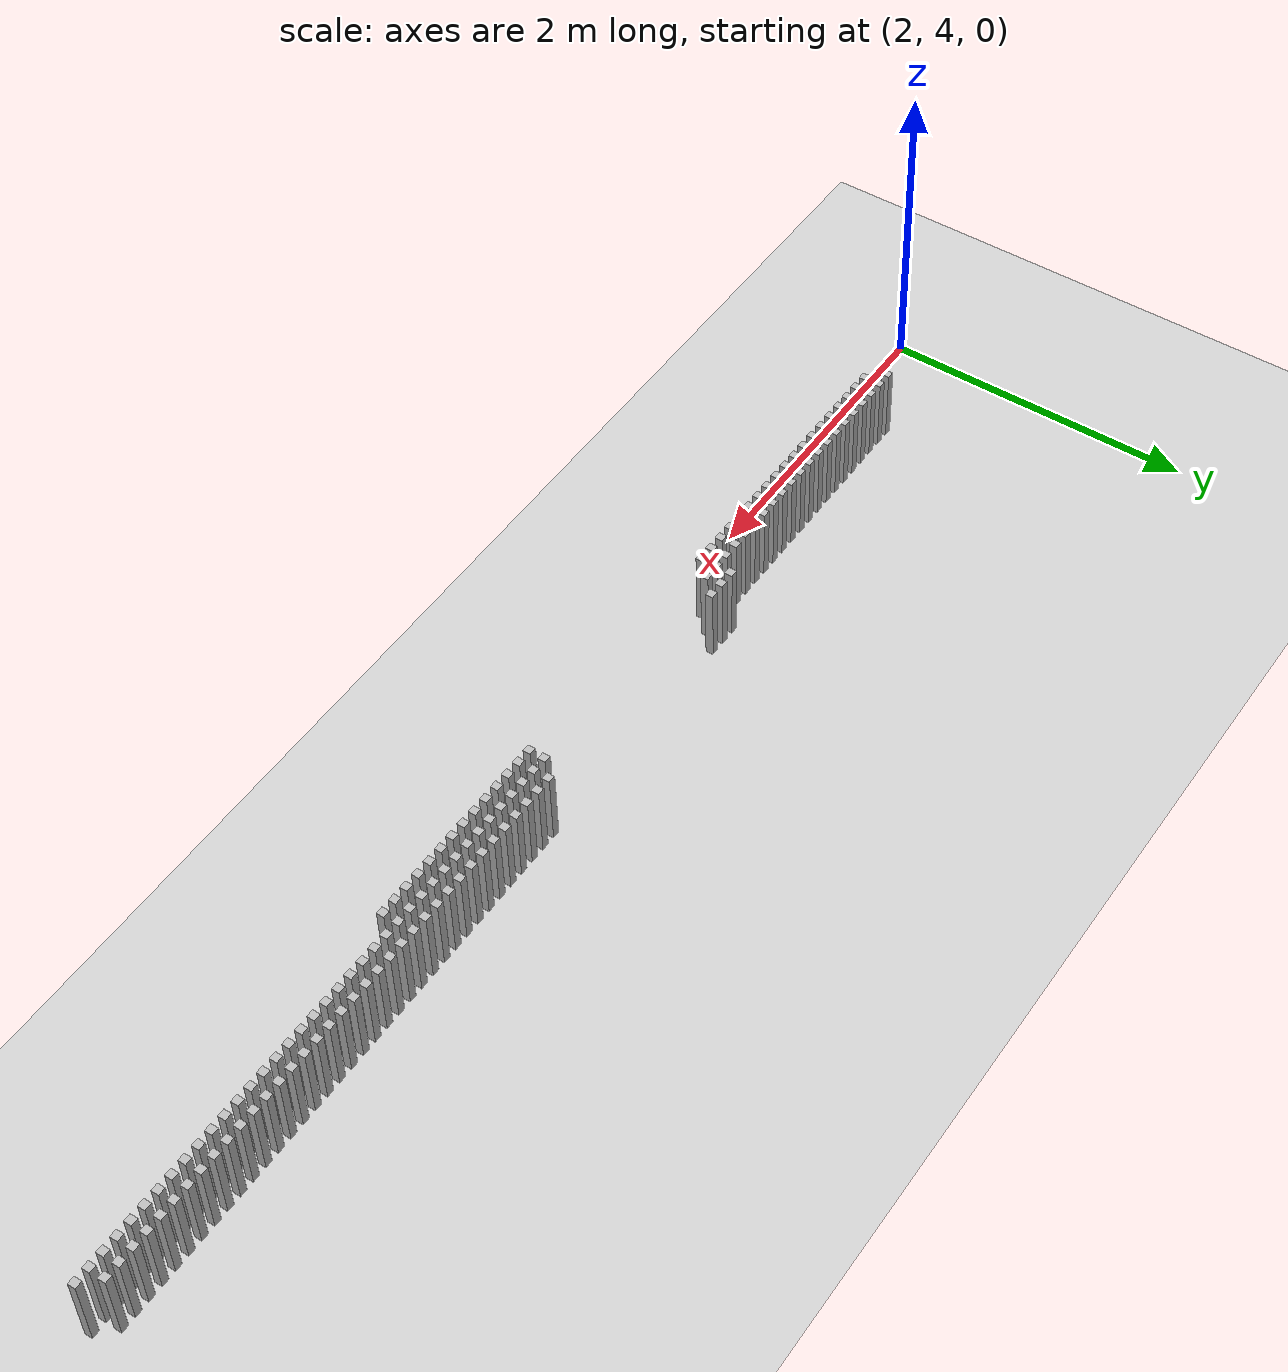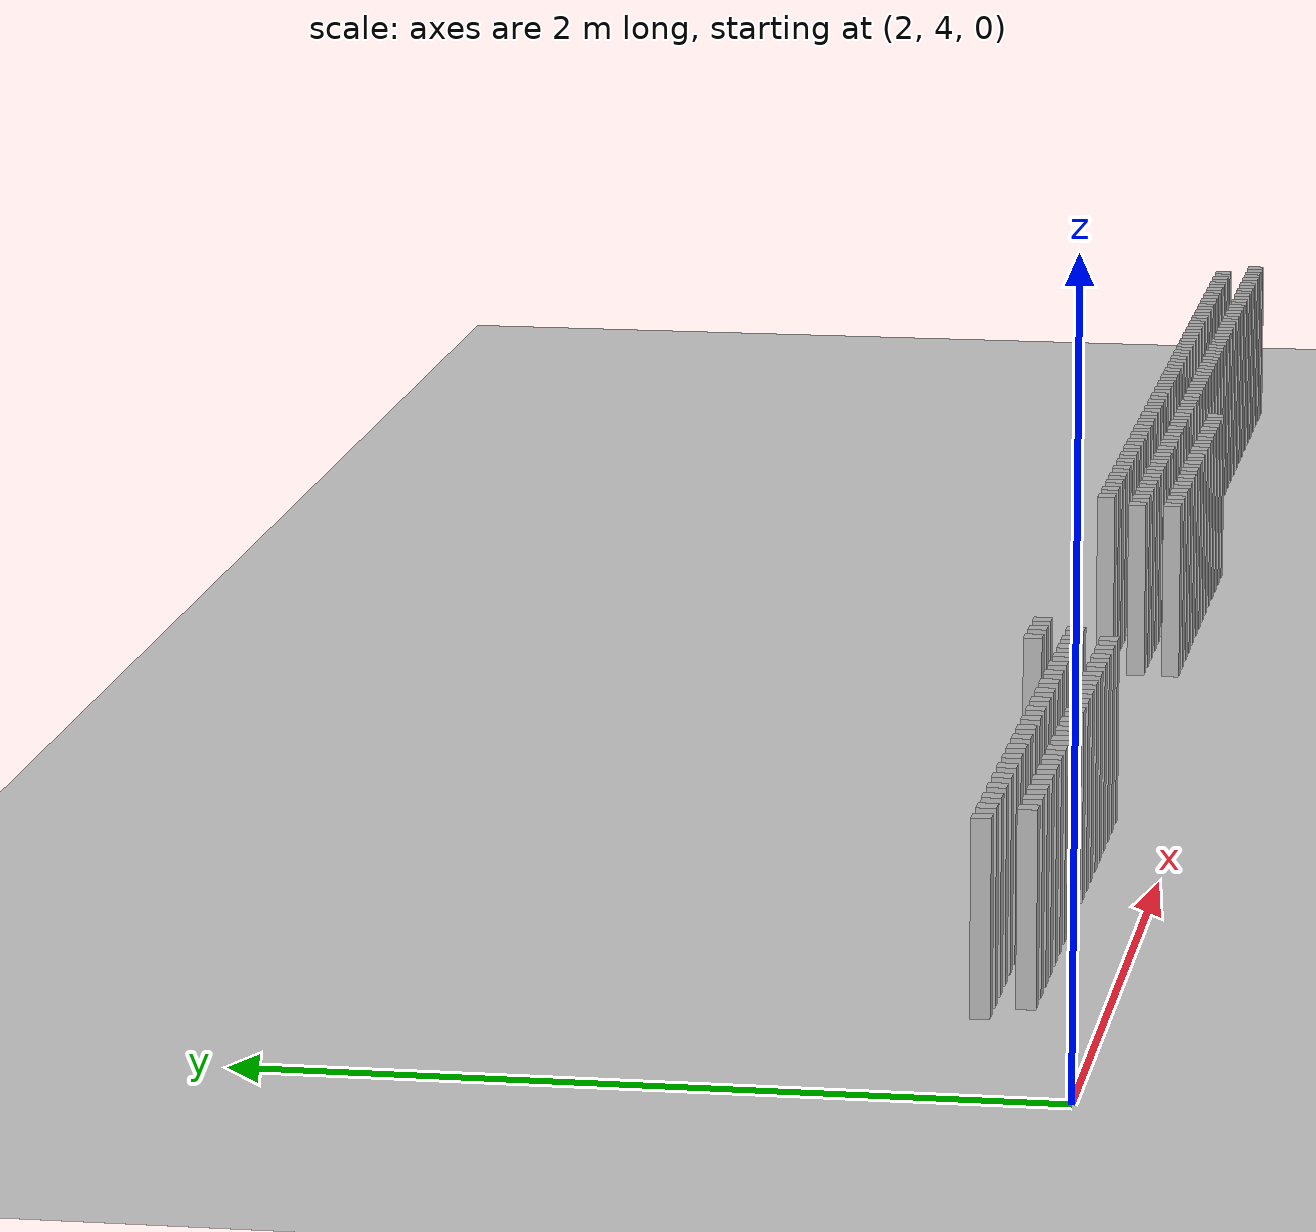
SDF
<sdf version="1.6">
 <world name="default_world">
  <include><uri>model://sun</uri></include>
  <include><uri>model://ground_plane</uri></include>
  <model name="wall_392">
   <static>true</static>
   <link name="link">
    <collision name="collision"><geometry><box><size>0.05 0.05 0.5</size></box></geometry></collision>
    <visual name="visual"><geometry><box><size>0.05 0.05 0.5</size></box></geometry></visual>
    <pose>4.6000000000000005 4.4 0.25 0 0 0</pose>
   </link>
  </model>
  <model name="wall_393">
   <static>true</static>
   <link name="link">
    <collision name="collision"><geometry><box><size>0.05 0.05 0.5</size></box></geometry></collision>
    <visual name="visual"><geometry><box><size>0.05 0.05 0.5</size></box></geometry></visual>
    <pose>4.7 4.4 0.25 0 0 0</pose>
   </link>
  </model>
  <model name="wall_394">
   <static>true</static>
   <link name="link">
    <collision name="collision"><geometry><box><size>0.05 0.05 0.5</size></box></geometry></collision>
    <visual name="visual"><geometry><box><size>0.05 0.05 0.5</size></box></geometry></visual>
    <pose>4.800000000000001 4.4 0.25 0 0 0</pose>
   </link>
  </model>
  <model name="wall_395">
   <static>true</static>
   <link name="link">
    <collision name="collision"><geometry><box><size>0.05 0.05 0.5</size></box></geometry></collision>
    <visual name="visual"><geometry><box><size>0.05 0.05 0.5</size></box></geometry></visual>
    <pose>6.4 4.4 0.25 0 0 0</pose>
   </link>
  </model>
  <model name="wall_396">
   <static>true</static>
   <link name="link">
    <collision name="collision"><geometry><box><size>0.05 0.05 0.5</size></box></geometry></collision>
    <visual name="visual"><geometry><box><size>0.05 0.05 0.5</size></box></geometry></visual>
    <pose>6.5 4.4 0.25 0 0 0</pose>
   </link>
  </model>
  <model name="wall_397">
   <static>true</static>
   <link name="link">
    <collision name="collision"><geometry><box><size>0.05 0.05 0.5</size></box></geometry></collision>
    <visual name="visual"><geometry><box><size>0.05 0.05 0.5</size></box></geometry></visual>
    <pose>6.6000000000000005 4.4 0.25 0 0 0</pose>
   </link>
  </model>
  <model name="wall_398">
   <static>true</static>
   <link name="link">
    <collision name="collision"><geometry><box><size>0.05 0.05 0.5</size></box></geometry></collision>
    <visual name="visual"><geometry><box><size>0.05 0.05 0.5</size></box></geometry></visual>
    <pose>6.7 4.4 0.25 0 0 0</pose>
   </link>
  </model>
  <model name="wall_399">
   <static>true</static>
   <link name="link">
    <collision name="collision"><geometry><box><size>0.05 0.05 0.5</size></box></geometry></collision>
    <visual name="visual"><geometry><box><size>0.05 0.05 0.5</size></box></geometry></visual>
    <pose>6.800000000000001 4.4 0.25 0 0 0</pose>
   </link>
  </model>
  <model name="wall_400">
   <static>true</static>
   <link name="link">
    <collision name="collision"><geometry><box><size>0.05 0.05 0.5</size></box></geometry></collision>
    <visual name="visual"><geometry><box><size>0.05 0.05 0.5</size></box></geometry></visual>
    <pose>6.9 4.4 0.25 0 0 0</pose>
   </link>
  </model>
  <model name="wall_401">
   <static>true</static>
   <link name="link">
    <collision name="collision"><geometry><box><size>0.05 0.05 0.5</size></box></geometry></collision>
    <visual name="visual"><geometry><box><size>0.05 0.05 0.5</size></box></geometry></visual>
    <pose>7.0 4.4 0.25 0 0 0</pose>
   </link>
  </model>
  <model name="wall_402">
   <static>true</static>
   <link name="link">
    <collision name="collision"><geometry><box><size>0.05 0.05 0.5</size></box></geometry></collision>
    <visual name="visual"><geometry><box><size>0.05 0.05 0.5</size></box></geometry></visual>
    <pose>7.1000000000000005 4.4 0.25 0 0 0</pose>
   </link>
  </model>
  <model name="wall_403">
   <static>true</static>
   <link name="link">
    <collision name="collision"><geometry><box><size>0.05 0.05 0.5</size></box></geometry></collision>
    <visual name="visual"><geometry><box><size>0.05 0.05 0.5</size></box></geometry></visual>
    <pose>7.2 4.4 0.25 0 0 0</pose>
   </link>
  </model>
  <model name="wall_404">
   <static>true</static>
   <link name="link">
    <collision name="collision"><geometry><box><size>0.05 0.05 0.5</size></box></geometry></collision>
    <visual name="visual"><geometry><box><size>0.05 0.05 0.5</size></box></geometry></visual>
    <pose>7.300000000000001 4.4 0.25 0 0 0</pose>
   </link>
  </model>
  <model name="wall_405">
   <static>true</static>
   <link name="link">
    <collision name="collision"><geometry><box><size>0.05 0.05 0.5</size></box></geometry></collision>
    <visual name="visual"><geometry><box><size>0.05 0.05 0.5</size></box></geometry></visual>
    <pose>7.4 4.4 0.25 0 0 0</pose>
   </link>
  </model>
  <model name="wall_406">
   <static>true</static>
   <link name="link">
    <collision name="collision"><geometry><box><size>0.05 0.05 0.5</size></box></geometry></collision>
    <visual name="visual"><geometry><box><size>0.05 0.05 0.5</size></box></geometry></visual>
    <pose>7.5 4.4 0.25 0 0 0</pose>
   </link>
  </model>
  <model name="wall_407">
   <static>true</static>
   <link name="link">
    <collision name="collision"><geometry><box><size>0.05 0.05 0.5</size></box></geometry></collision>
    <visual name="visual"><geometry><box><size>0.05 0.05 0.5</size></box></geometry></visual>
    <pose>7.6000000000000005 4.4 0.25 0 0 0</pose>
   </link>
  </model>
  <model name="wall_408">
   <static>true</static>
   <link name="link">
    <collision name="collision"><geometry><box><size>0.05 0.05 0.5</size></box></geometry></collision>
    <visual name="visual"><geometry><box><size>0.05 0.05 0.5</size></box></geometry></visual>
    <pose>7.7 4.4 0.25 0 0 0</pose>
   </link>
  </model>
  <model name="wall_409">
   <static>true</static>
   <link name="link">
    <collision name="collision"><geometry><box><size>0.05 0.05 0.5</size></box></geometry></collision>
    <visual name="visual"><geometry><box><size>0.05 0.05 0.5</size></box></geometry></visual>
    <pose>7.800000000000001 4.4 0.25 0 0 0</pose>
   </link>
  </model>
  <model name="wall_410">
   <static>true</static>
   <link name="link">
    <collision name="collision"><geometry><box><size>0.05 0.05 0.5</size></box></geometry></collision>
    <visual name="visual"><geometry><box><size>0.05 0.05 0.5</size></box></geometry></visual>
    <pose>7.9 4.4 0.25 0 0 0</pose>
   </link>
  </model>
  <model name="wall_411">
   <static>true</static>
   <link name="link">
    <collision name="collision"><geometry><box><size>0.05 0.05 0.5</size></box></geometry></collision>
    <visual name="visual"><geometry><box><size>0.05 0.05 0.5</size></box></geometry></visual>
    <pose>8.0 4.4 0.25 0 0 0</pose>
   </link>
  </model>
  <model name="wall_412">
   <static>true</static>
   <link name="link">
    <collision name="collision"><geometry><box><size>0.05 0.05 0.5</size></box></geometry></collision>
    <visual name="visual"><geometry><box><size>0.05 0.05 0.5</size></box></geometry></visual>
    <pose>8.1 4.4 0.25 0 0 0</pose>
   </link>
  </model>
  <model name="wall_413">
   <static>true</static>
   <link name="link">
    <collision name="collision"><geometry><box><size>0.05 0.05 0.5</size></box></geometry></collision>
    <visual name="visual"><geometry><box><size>0.05 0.05 0.5</size></box></geometry></visual>
    <pose>8.200000000000001 4.4 0.25 0 0 0</pose>
   </link>
  </model>
  <model name="wall_414">
   <static>true</static>
   <link name="link">
    <collision name="collision"><geometry><box><size>0.05 0.05 0.5</size></box></geometry></collision>
    <visual name="visual"><geometry><box><size>0.05 0.05 0.5</size></box></geometry></visual>
    <pose>8.3 4.4 0.25 0 0 0</pose>
   </link>
  </model>
  <model name="wall_415">
   <static>true</static>
   <link name="link">
    <collision name="collision"><geometry><box><size>0.05 0.05 0.5</size></box></geometry></collision>
    <visual name="visual"><geometry><box><size>0.05 0.05 0.5</size></box></geometry></visual>
    <pose>8.4 4.4 0.25 0 0 0</pose>
   </link>
  </model>
  <model name="wall_416">
   <static>true</static>
   <link name="link">
    <collision name="collision"><geometry><box><size>0.05 0.05 0.5</size></box></geometry></collision>
    <visual name="visual"><geometry><box><size>0.05 0.05 0.5</size></box></geometry></visual>
    <pose>8.5 4.4 0.25 0 0 0</pose>
   </link>
  </model>
  <model name="wall_417">
   <static>true</static>
   <link name="link">
    <collision name="collision"><geometry><box><size>0.05 0.05 0.5</size></box></geometry></collision>
    <visual name="visual"><geometry><box><size>0.05 0.05 0.5</size></box></geometry></visual>
    <pose>8.6 4.4 0.25 0 0 0</pose>
   </link>
  </model>
  <model name="wall_418">
   <static>true</static>
   <link name="link">
    <collision name="collision"><geometry><box><size>0.05 0.05 0.5</size></box></geometry></collision>
    <visual name="visual"><geometry><box><size>0.05 0.05 0.5</size></box></geometry></visual>
    <pose>8.700000000000001 4.4 0.25 0 0 0</pose>
   </link>
  </model>
  <model name="wall_419">
   <static>true</static>
   <link name="link">
    <collision name="collision"><geometry><box><size>0.05 0.05 0.5</size></box></geometry></collision>
    <visual name="visual"><geometry><box><size>0.05 0.05 0.5</size></box></geometry></visual>
    <pose>8.8 4.4 0.25 0 0 0</pose>
   </link>
  </model>
  <model name="wall_420">
   <static>true</static>
   <link name="link">
    <collision name="collision"><geometry><box><size>0.05 0.05 0.5</size></box></geometry></collision>
    <visual name="visual"><geometry><box><size>0.05 0.05 0.5</size></box></geometry></visual>
    <pose>8.9 4.4 0.25 0 0 0</pose>
   </link>
  </model>
  <model name="wall_421">
   <static>true</static>
   <link name="link">
    <collision name="collision"><geometry><box><size>0.05 0.05 0.5</size></box></geometry></collision>
    <visual name="visual"><geometry><box><size>0.05 0.05 0.5</size></box></geometry></visual>
    <pose>9.0 4.4 0.25 0 0 0</pose>
   </link>
  </model>
  <model name="wall_422">
   <static>true</static>
   <link name="link">
    <collision name="collision"><geometry><box><size>0.05 0.05 0.5</size></box></geometry></collision>
    <visual name="visual"><geometry><box><size>0.05 0.05 0.5</size></box></geometry></visual>
    <pose>9.1 4.4 0.25 0 0 0</pose>
   </link>
  </model>
  <model name="wall_423">
   <static>true</static>
   <link name="link">
    <collision name="collision"><geometry><box><size>0.05 0.05 0.5</size></box></geometry></collision>
    <visual name="visual"><geometry><box><size>0.05 0.05 0.5</size></box></geometry></visual>
    <pose>9.200000000000001 4.4 0.25 0 0 0</pose>
   </link>
  </model>
  <model name="wall_424">
   <static>true</static>
   <link name="link">
    <collision name="collision"><geometry><box><size>0.05 0.05 0.5</size></box></geometry></collision>
    <visual name="visual"><geometry><box><size>0.05 0.05 0.5</size></box></geometry></visual>
    <pose>9.3 4.4 0.25 0 0 0</pose>
   </link>
  </model>
  <model name="wall_425">
   <static>true</static>
   <link name="link">
    <collision name="collision"><geometry><box><size>0.05 0.05 0.5</size></box></geometry></collision>
    <visual name="visual"><geometry><box><size>0.05 0.05 0.5</size></box></geometry></visual>
    <pose>9.4 4.4 0.25 0 0 0</pose>
   </link>
  </model>
  <model name="wall_426">
   <static>true</static>
   <link name="link">
    <collision name="collision"><geometry><box><size>0.05 0.05 0.5</size></box></geometry></collision>
    <visual name="visual"><geometry><box><size>0.05 0.05 0.5</size></box></geometry></visual>
    <pose>9.5 4.4 0.25 0 0 0</pose>
   </link>
  </model>
  <model name="wall_427">
   <static>true</static>
   <link name="link">
    <collision name="collision"><geometry><box><size>0.05 0.05 0.5</size></box></geometry></collision>
    <visual name="visual"><geometry><box><size>0.05 0.05 0.5</size></box></geometry></visual>
    <pose>9.600000000000001 4.4 0.25 0 0 0</pose>
   </link>
  </model>
  <model name="wall_428">
   <static>true</static>
   <link name="link">
    <collision name="collision"><geometry><box><size>0.05 0.05 0.5</size></box></geometry></collision>
    <visual name="visual"><geometry><box><size>0.05 0.05 0.5</size></box></geometry></visual>
    <pose>9.700000000000001 4.4 0.25 0 0 0</pose>
   </link>
  </model>
  <model name="wall_429">
   <static>true</static>
   <link name="link">
    <collision name="collision"><geometry><box><size>0.05 0.05 0.5</size></box></geometry></collision>
    <visual name="visual"><geometry><box><size>0.05 0.05 0.5</size></box></geometry></visual>
    <pose>9.8 4.4 0.25 0 0 0</pose>
   </link>
  </model>
  <model name="wall_430">
   <static>true</static>
   <link name="link">
    <collision name="collision"><geometry><box><size>0.05 0.05 0.5</size></box></geometry></collision>
    <visual name="visual"><geometry><box><size>0.05 0.05 0.5</size></box></geometry></visual>
    <pose>9.9 4.4 0.25 0 0 0</pose>
   </link>
  </model>
  <model name="wall_431">
   <static>true</static>
   <link name="link">
    <collision name="collision"><geometry><box><size>0.05 0.05 0.5</size></box></geometry></collision>
    <visual name="visual"><geometry><box><size>0.05 0.05 0.5</size></box></geometry></visual>
    <pose>10.0 4.4 0.25 0 0 0</pose>
   </link>
  </model>
  <model name="wall_432">
   <static>true</static>
   <link name="link">
    <collision name="collision"><geometry><box><size>0.05 0.05 0.5</size></box></geometry></collision>
    <visual name="visual"><geometry><box><size>0.05 0.05 0.5</size></box></geometry></visual>
    <pose>2.7 4.3 0.25 0 0 0</pose>
   </link>
  </model>
  <model name="wall_433">
   <static>true</static>
   <link name="link">
    <collision name="collision"><geometry><box><size>0.05 0.05 0.5</size></box></geometry></collision>
    <visual name="visual"><geometry><box><size>0.05 0.05 0.5</size></box></geometry></visual>
    <pose>2.8000000000000003 4.3 0.25 0 0 0</pose>
   </link>
  </model>
  <model name="wall_434">
   <static>true</static>
   <link name="link">
    <collision name="collision"><geometry><box><size>0.05 0.05 0.5</size></box></geometry></collision>
    <visual name="visual"><geometry><box><size>0.05 0.05 0.5</size></box></geometry></visual>
    <pose>2.9000000000000004 4.3 0.25 0 0 0</pose>
   </link>
  </model>
  <model name="wall_435">
   <static>true</static>
   <link name="link">
    <collision name="collision"><geometry><box><size>0.05 0.05 0.5</size></box></geometry></collision>
    <visual name="visual"><geometry><box><size>0.05 0.05 0.5</size></box></geometry></visual>
    <pose>3.0 4.3 0.25 0 0 0</pose>
   </link>
  </model>
  <model name="wall_436">
   <static>true</static>
   <link name="link">
    <collision name="collision"><geometry><box><size>0.05 0.05 0.5</size></box></geometry></collision>
    <visual name="visual"><geometry><box><size>0.05 0.05 0.5</size></box></geometry></visual>
    <pose>3.1 4.3 0.25 0 0 0</pose>
   </link>
  </model>
  <model name="wall_437">
   <static>true</static>
   <link name="link">
    <collision name="collision"><geometry><box><size>0.05 0.05 0.5</size></box></geometry></collision>
    <visual name="visual"><geometry><box><size>0.05 0.05 0.5</size></box></geometry></visual>
    <pose>3.2 4.3 0.25 0 0 0</pose>
   </link>
  </model>
  <model name="wall_438">
   <static>true</static>
   <link name="link">
    <collision name="collision"><geometry><box><size>0.05 0.05 0.5</size></box></geometry></collision>
    <visual name="visual"><geometry><box><size>0.05 0.05 0.5</size></box></geometry></visual>
    <pose>3.3000000000000003 4.3 0.25 0 0 0</pose>
   </link>
  </model>
  <model name="wall_439">
   <static>true</static>
   <link name="link">
    <collision name="collision"><geometry><box><size>0.05 0.05 0.5</size></box></geometry></collision>
    <visual name="visual"><geometry><box><size>0.05 0.05 0.5</size></box></geometry></visual>
    <pose>3.4000000000000004 4.3 0.25 0 0 0</pose>
   </link>
  </model>
  <model name="wall_440">
   <static>true</static>
   <link name="link">
    <collision name="collision"><geometry><box><size>0.05 0.05 0.5</size></box></geometry></collision>
    <visual name="visual"><geometry><box><size>0.05 0.05 0.5</size></box></geometry></visual>
    <pose>3.5 4.3 0.25 0 0 0</pose>
   </link>
  </model>
  <model name="wall_441">
   <static>true</static>
   <link name="link">
    <collision name="collision"><geometry><box><size>0.05 0.05 0.5</size></box></geometry></collision>
    <visual name="visual"><geometry><box><size>0.05 0.05 0.5</size></box></geometry></visual>
    <pose>3.6 4.3 0.25 0 0 0</pose>
   </link>
  </model>
  <model name="wall_442">
   <static>true</static>
   <link name="link">
    <collision name="collision"><geometry><box><size>0.05 0.05 0.5</size></box></geometry></collision>
    <visual name="visual"><geometry><box><size>0.05 0.05 0.5</size></box></geometry></visual>
    <pose>3.7 4.3 0.25 0 0 0</pose>
   </link>
  </model>
  <model name="wall_443">
   <static>true</static>
   <link name="link">
    <collision name="collision"><geometry><box><size>0.05 0.05 0.5</size></box></geometry></collision>
    <visual name="visual"><geometry><box><size>0.05 0.05 0.5</size></box></geometry></visual>
    <pose>3.8000000000000003 4.3 0.25 0 0 0</pose>
   </link>
  </model>
  <model name="wall_444">
   <static>true</static>
   <link name="link">
    <collision name="collision"><geometry><box><size>0.05 0.05 0.5</size></box></geometry></collision>
    <visual name="visual"><geometry><box><size>0.05 0.05 0.5</size></box></geometry></visual>
    <pose>3.9000000000000004 4.3 0.25 0 0 0</pose>
   </link>
  </model>
  <model name="wall_445">
   <static>true</static>
   <link name="link">
    <collision name="collision"><geometry><box><size>0.05 0.05 0.5</size></box></geometry></collision>
    <visual name="visual"><geometry><box><size>0.05 0.05 0.5</size></box></geometry></visual>
    <pose>4.0 4.3 0.25 0 0 0</pose>
   </link>
  </model>
  <model name="wall_446">
   <static>true</static>
   <link name="link">
    <collision name="collision"><geometry><box><size>0.05 0.05 0.5</size></box></geometry></collision>
    <visual name="visual"><geometry><box><size>0.05 0.05 0.5</size></box></geometry></visual>
    <pose>4.1000000000000005 4.3 0.25 0 0 0</pose>
   </link>
  </model>
  <model name="wall_447">
   <static>true</static>
   <link name="link">
    <collision name="collision"><geometry><box><size>0.05 0.05 0.5</size></box></geometry></collision>
    <visual name="visual"><geometry><box><size>0.05 0.05 0.5</size></box></geometry></visual>
    <pose>4.2 4.3 0.25 0 0 0</pose>
   </link>
  </model>
  <model name="wall_448">
   <static>true</static>
   <link name="link">
    <collision name="collision"><geometry><box><size>0.05 0.05 0.5</size></box></geometry></collision>
    <visual name="visual"><geometry><box><size>0.05 0.05 0.5</size></box></geometry></visual>
    <pose>4.3 4.3 0.25 0 0 0</pose>
   </link>
  </model>
  <model name="wall_449">
   <static>true</static>
   <link name="link">
    <collision name="collision"><geometry><box><size>0.05 0.05 0.5</size></box></geometry></collision>
    <visual name="visual"><geometry><box><size>0.05 0.05 0.5</size></box></geometry></visual>
    <pose>4.4 4.3 0.25 0 0 0</pose>
   </link>
  </model>
  <model name="wall_450">
   <static>true</static>
   <link name="link">
    <collision name="collision"><geometry><box><size>0.05 0.05 0.5</size></box></geometry></collision>
    <visual name="visual"><geometry><box><size>0.05 0.05 0.5</size></box></geometry></visual>
    <pose>4.5 4.3 0.25 0 0 0</pose>
   </link>
  </model>
  <model name="wall_451">
   <static>true</static>
   <link name="link">
    <collision name="collision"><geometry><box><size>0.05 0.05 0.5</size></box></geometry></collision>
    <visual name="visual"><geometry><box><size>0.05 0.05 0.5</size></box></geometry></visual>
    <pose>4.6000000000000005 4.3 0.25 0 0 0</pose>
   </link>
  </model>
  <model name="wall_452">
   <static>true</static>
   <link name="link">
    <collision name="collision"><geometry><box><size>0.05 0.05 0.5</size></box></geometry></collision>
    <visual name="visual"><geometry><box><size>0.05 0.05 0.5</size></box></geometry></visual>
    <pose>4.7 4.3 0.25 0 0 0</pose>
   </link>
  </model>
  <model name="wall_453">
   <static>true</static>
   <link name="link">
    <collision name="collision"><geometry><box><size>0.05 0.05 0.5</size></box></geometry></collision>
    <visual name="visual"><geometry><box><size>0.05 0.05 0.5</size></box></geometry></visual>
    <pose>6.300000000000001 4.3 0.25 0 0 0</pose>
   </link>
  </model>
  <model name="wall_454">
   <static>true</static>
   <link name="link">
    <collision name="collision"><geometry><box><size>0.05 0.05 0.5</size></box></geometry></collision>
    <visual name="visual"><geometry><box><size>0.05 0.05 0.5</size></box></geometry></visual>
    <pose>6.4 4.3 0.25 0 0 0</pose>
   </link>
  </model>
  <model name="wall_455">
   <static>true</static>
   <link name="link">
    <collision name="collision"><geometry><box><size>0.05 0.05 0.5</size></box></geometry></collision>
    <visual name="visual"><geometry><box><size>0.05 0.05 0.5</size></box></geometry></visual>
    <pose>6.5 4.3 0.25 0 0 0</pose>
   </link>
  </model>
  <model name="wall_456">
   <static>true</static>
   <link name="link">
    <collision name="collision"><geometry><box><size>0.05 0.05 0.5</size></box></geometry></collision>
    <visual name="visual"><geometry><box><size>0.05 0.05 0.5</size></box></geometry></visual>
    <pose>6.6000000000000005 4.3 0.25 0 0 0</pose>
   </link>
  </model>
  <model name="wall_457">
   <static>true</static>
   <link name="link">
    <collision name="collision"><geometry><box><size>0.05 0.05 0.5</size></box></geometry></collision>
    <visual name="visual"><geometry><box><size>0.05 0.05 0.5</size></box></geometry></visual>
    <pose>6.7 4.3 0.25 0 0 0</pose>
   </link>
  </model>
  <model name="wall_458">
   <static>true</static>
   <link name="link">
    <collision name="collision"><geometry><box><size>0.05 0.05 0.5</size></box></geometry></collision>
    <visual name="visual"><geometry><box><size>0.05 0.05 0.5</size></box></geometry></visual>
    <pose>6.800000000000001 4.3 0.25 0 0 0</pose>
   </link>
  </model>
  <model name="wall_459">
   <static>true</static>
   <link name="link">
    <collision name="collision"><geometry><box><size>0.05 0.05 0.5</size></box></geometry></collision>
    <visual name="visual"><geometry><box><size>0.05 0.05 0.5</size></box></geometry></visual>
    <pose>6.9 4.3 0.25 0 0 0</pose>
   </link>
  </model>
  <model name="wall_460">
   <static>true</static>
   <link name="link">
    <collision name="collision"><geometry><box><size>0.05 0.05 0.5</size></box></geometry></collision>
    <visual name="visual"><geometry><box><size>0.05 0.05 0.5</size></box></geometry></visual>
    <pose>7.0 4.3 0.25 0 0 0</pose>
   </link>
  </model>
  <model name="wall_461">
   <static>true</static>
   <link name="link">
    <collision name="collision"><geometry><box><size>0.05 0.05 0.5</size></box></geometry></collision>
    <visual name="visual"><geometry><box><size>0.05 0.05 0.5</size></box></geometry></visual>
    <pose>7.1000000000000005 4.3 0.25 0 0 0</pose>
   </link>
  </model>
  <model name="wall_462">
   <static>true</static>
   <link name="link">
    <collision name="collision"><geometry><box><size>0.05 0.05 0.5</size></box></geometry></collision>
    <visual name="visual"><geometry><box><size>0.05 0.05 0.5</size></box></geometry></visual>
    <pose>7.2 4.3 0.25 0 0 0</pose>
   </link>
  </model>
  <model name="wall_463">
   <static>true</static>
   <link name="link">
    <collision name="collision"><geometry><box><size>0.05 0.05 0.5</size></box></geometry></collision>
    <visual name="visual"><geometry><box><size>0.05 0.05 0.5</size></box></geometry></visual>
    <pose>7.300000000000001 4.3 0.25 0 0 0</pose>
   </link>
  </model>
  <model name="wall_464">
   <static>true</static>
   <link name="link">
    <collision name="collision"><geometry><box><size>0.05 0.05 0.5</size></box></geometry></collision>
    <visual name="visual"><geometry><box><size>0.05 0.05 0.5</size></box></geometry></visual>
    <pose>7.4 4.3 0.25 0 0 0</pose>
   </link>
  </model>
  <model name="wall_465">
   <static>true</static>
   <link name="link">
    <collision name="collision"><geometry><box><size>0.05 0.05 0.5</size></box></geometry></collision>
    <visual name="visual"><geometry><box><size>0.05 0.05 0.5</size></box></geometry></visual>
    <pose>7.5 4.3 0.25 0 0 0</pose>
   </link>
  </model>
  <model name="wall_466">
   <static>true</static>
   <link name="link">
    <collision name="collision"><geometry><box><size>0.05 0.05 0.5</size></box></geometry></collision>
    <visual name="visual"><geometry><box><size>0.05 0.05 0.5</size></box></geometry></visual>
    <pose>7.6000000000000005 4.3 0.25 0 0 0</pose>
   </link>
  </model>
  <model name="wall_467">
   <static>true</static>
   <link name="link">
    <collision name="collision"><geometry><box><size>0.05 0.05 0.5</size></box></geometry></collision>
    <visual name="visual"><geometry><box><size>0.05 0.05 0.5</size></box></geometry></visual>
    <pose>7.7 4.3 0.25 0 0 0</pose>
   </link>
  </model>
  <model name="wall_468">
   <static>true</static>
   <link name="link">
    <collision name="collision"><geometry><box><size>0.05 0.05 0.5</size></box></geometry></collision>
    <visual name="visual"><geometry><box><size>0.05 0.05 0.5</size></box></geometry></visual>
    <pose>7.800000000000001 4.3 0.25 0 0 0</pose>
   </link>
  </model>
  <model name="wall_469">
   <static>true</static>
   <link name="link">
    <collision name="collision"><geometry><box><size>0.05 0.05 0.5</size></box></geometry></collision>
    <visual name="visual"><geometry><box><size>0.05 0.05 0.5</size></box></geometry></visual>
    <pose>7.9 4.3 0.25 0 0 0</pose>
   </link>
  </model>
  <model name="wall_470">
   <static>true</static>
   <link name="link">
    <collision name="collision"><geometry><box><size>0.05 0.05 0.5</size></box></geometry></collision>
    <visual name="visual"><geometry><box><size>0.05 0.05 0.5</size></box></geometry></visual>
    <pose>8.0 4.3 0.25 0 0 0</pose>
   </link>
  </model>
  <model name="wall_471">
   <static>true</static>
   <link name="link">
    <collision name="collision"><geometry><box><size>0.05 0.05 0.5</size></box></geometry></collision>
    <visual name="visual"><geometry><box><size>0.05 0.05 0.5</size></box></geometry></visual>
    <pose>8.1 4.3 0.25 0 0 0</pose>
   </link>
  </model>
  <model name="wall_472">
   <static>true</static>
   <link name="link">
    <collision name="collision"><geometry><box><size>0.05 0.05 0.5</size></box></geometry></collision>
    <visual name="visual"><geometry><box><size>0.05 0.05 0.5</size></box></geometry></visual>
    <pose>8.200000000000001 4.3 0.25 0 0 0</pose>
   </link>
  </model>
  <model name="wall_473">
   <static>true</static>
   <link name="link">
    <collision name="collision"><geometry><box><size>0.05 0.05 0.5</size></box></geometry></collision>
    <visual name="visual"><geometry><box><size>0.05 0.05 0.5</size></box></geometry></visual>
    <pose>8.3 4.3 0.25 0 0 0</pose>
   </link>
  </model>
  <model name="wall_474">
   <static>true</static>
   <link name="link">
    <collision name="collision"><geometry><box><size>0.05 0.05 0.5</size></box></geometry></collision>
    <visual name="visual"><geometry><box><size>0.05 0.05 0.5</size></box></geometry></visual>
    <pose>8.4 4.3 0.25 0 0 0</pose>
   </link>
  </model>
  <model name="wall_475">
   <static>true</static>
   <link name="link">
    <collision name="collision"><geometry><box><size>0.05 0.05 0.5</size></box></geometry></collision>
    <visual name="visual"><geometry><box><size>0.05 0.05 0.5</size></box></geometry></visual>
    <pose>8.5 4.3 0.25 0 0 0</pose>
   </link>
  </model>
  <model name="wall_476">
   <static>true</static>
   <link name="link">
    <collision name="collision"><geometry><box><size>0.05 0.05 0.5</size></box></geometry></collision>
    <visual name="visual"><geometry><box><size>0.05 0.05 0.5</size></box></geometry></visual>
    <pose>8.6 4.3 0.25 0 0 0</pose>
   </link>
  </model>
  <model name="wall_477">
   <static>true</static>
   <link name="link">
    <collision name="collision"><geometry><box><size>0.05 0.05 0.5</size></box></geometry></collision>
    <visual name="visual"><geometry><box><size>0.05 0.05 0.5</size></box></geometry></visual>
    <pose>8.700000000000001 4.3 0.25 0 0 0</pose>
   </link>
  </model>
  <model name="wall_478">
   <static>true</static>
   <link name="link">
    <collision name="collision"><geometry><box><size>0.05 0.05 0.5</size></box></geometry></collision>
    <visual name="visual"><geometry><box><size>0.05 0.05 0.5</size></box></geometry></visual>
    <pose>8.8 4.3 0.25 0 0 0</pose>
   </link>
  </model>
  <model name="wall_479">
   <static>true</static>
   <link name="link">
    <collision name="collision"><geometry><box><size>0.05 0.05 0.5</size></box></geometry></collision>
    <visual name="visual"><geometry><box><size>0.05 0.05 0.5</size></box></geometry></visual>
    <pose>8.9 4.3 0.25 0 0 0</pose>
   </link>
  </model>
  <model name="wall_480">
   <static>true</static>
   <link name="link">
    <collision name="collision"><geometry><box><size>0.05 0.05 0.5</size></box></geometry></collision>
    <visual name="visual"><geometry><box><size>0.05 0.05 0.5</size></box></geometry></visual>
    <pose>9.0 4.3 0.25 0 0 0</pose>
   </link>
  </model>
  <model name="wall_481">
   <static>true</static>
   <link name="link">
    <collision name="collision"><geometry><box><size>0.05 0.05 0.5</size></box></geometry></collision>
    <visual name="visual"><geometry><box><size>0.05 0.05 0.5</size></box></geometry></visual>
    <pose>9.1 4.3 0.25 0 0 0</pose>
   </link>
  </model>
  <model name="wall_482">
   <static>true</static>
   <link name="link">
    <collision name="collision"><geometry><box><size>0.05 0.05 0.5</size></box></geometry></collision>
    <visual name="visual"><geometry><box><size>0.05 0.05 0.5</size></box></geometry></visual>
    <pose>9.200000000000001 4.3 0.25 0 0 0</pose>
   </link>
  </model>
  <model name="wall_483">
   <static>true</static>
   <link name="link">
    <collision name="collision"><geometry><box><size>0.05 0.05 0.5</size></box></geometry></collision>
    <visual name="visual"><geometry><box><size>0.05 0.05 0.5</size></box></geometry></visual>
    <pose>9.3 4.3 0.25 0 0 0</pose>
   </link>
  </model>
  <model name="wall_484">
   <static>true</static>
   <link name="link">
    <collision name="collision"><geometry><box><size>0.05 0.05 0.5</size></box></geometry></collision>
    <visual name="visual"><geometry><box><size>0.05 0.05 0.5</size></box></geometry></visual>
    <pose>9.4 4.3 0.25 0 0 0</pose>
   </link>
  </model>
  <model name="wall_485">
   <static>true</static>
   <link name="link">
    <collision name="collision"><geometry><box><size>0.05 0.05 0.5</size></box></geometry></collision>
    <visual name="visual"><geometry><box><size>0.05 0.05 0.5</size></box></geometry></visual>
    <pose>9.5 4.3 0.25 0 0 0</pose>
   </link>
  </model>
  <model name="wall_486">
   <static>true</static>
   <link name="link">
    <collision name="collision"><geometry><box><size>0.05 0.05 0.5</size></box></geometry></collision>
    <visual name="visual"><geometry><box><size>0.05 0.05 0.5</size></box></geometry></visual>
    <pose>9.600000000000001 4.3 0.25 0 0 0</pose>
   </link>
  </model>
  <model name="wall_487">
   <static>true</static>
   <link name="link">
    <collision name="collision"><geometry><box><size>0.05 0.05 0.5</size></box></geometry></collision>
    <visual name="visual"><geometry><box><size>0.05 0.05 0.5</size></box></geometry></visual>
    <pose>9.700000000000001 4.3 0.25 0 0 0</pose>
   </link>
  </model>
  <model name="wall_488">
   <static>true</static>
   <link name="link">
    <collision name="collision"><geometry><box><size>0.05 0.05 0.5</size></box></geometry></collision>
    <visual name="visual"><geometry><box><size>0.05 0.05 0.5</size></box></geometry></visual>
    <pose>9.8 4.3 0.25 0 0 0</pose>
   </link>
  </model>
  <model name="wall_489">
   <static>true</static>
   <link name="link">
    <collision name="collision"><geometry><box><size>0.05 0.05 0.5</size></box></geometry></collision>
    <visual name="visual"><geometry><box><size>0.05 0.05 0.5</size></box></geometry></visual>
    <pose>9.9 4.3 0.25 0 0 0</pose>
   </link>
  </model>
  <model name="wall_490">
   <static>true</static>
   <link name="link">
    <collision name="collision"><geometry><box><size>0.05 0.05 0.5</size></box></geometry></collision>
    <visual name="visual"><geometry><box><size>0.05 0.05 0.5</size></box></geometry></visual>
    <pose>10.0 4.3 0.25 0 0 0</pose>
   </link>
  </model>
  <model name="wall_491">
   <static>true</static>
   <link name="link">
    <collision name="collision"><geometry><box><size>0.05 0.05 0.5</size></box></geometry></collision>
    <visual name="visual"><geometry><box><size>0.05 0.05 0.5</size></box></geometry></visual>
    <pose>10.100000000000001 4.3 0.25 0 0 0</pose>
   </link>
  </model>
  <model name="wall_492">
   <static>true</static>
   <link name="link">
    <collision name="collision"><geometry><box><size>0.05 0.05 0.5</size></box></geometry></collision>
    <visual name="visual"><geometry><box><size>0.05 0.05 0.5</size></box></geometry></visual>
    <pose>2.8000000000000003 4.2 0.25 0 0 0</pose>
   </link>
  </model>
  <model name="wall_493">
   <static>true</static>
   <link name="link">
    <collision name="collision"><geometry><box><size>0.05 0.05 0.5</size></box></geometry></collision>
    <visual name="visual"><geometry><box><size>0.05 0.05 0.5</size></box></geometry></visual>
    <pose>2.9000000000000004 4.2 0.25 0 0 0</pose>
   </link>
  </model>
  <model name="wall_494">
   <static>true</static>
   <link name="link">
    <collision name="collision"><geometry><box><size>0.05 0.05 0.5</size></box></geometry></collision>
    <visual name="visual"><geometry><box><size>0.05 0.05 0.5</size></box></geometry></visual>
    <pose>3.0 4.2 0.25 0 0 0</pose>
   </link>
  </model>
  <model name="wall_495">
   <static>true</static>
   <link name="link">
    <collision name="collision"><geometry><box><size>0.05 0.05 0.5</size></box></geometry></collision>
    <visual name="visual"><geometry><box><size>0.05 0.05 0.5</size></box></geometry></visual>
    <pose>3.1 4.2 0.25 0 0 0</pose>
   </link>
  </model>
  <model name="wall_496">
   <static>true</static>
   <link name="link">
    <collision name="collision"><geometry><box><size>0.05 0.05 0.5</size></box></geometry></collision>
    <visual name="visual"><geometry><box><size>0.05 0.05 0.5</size></box></geometry></visual>
    <pose>3.2 4.2 0.25 0 0 0</pose>
   </link>
  </model>
  <model name="wall_497">
   <static>true</static>
   <link name="link">
    <collision name="collision"><geometry><box><size>0.05 0.05 0.5</size></box></geometry></collision>
    <visual name="visual"><geometry><box><size>0.05 0.05 0.5</size></box></geometry></visual>
    <pose>3.3000000000000003 4.2 0.25 0 0 0</pose>
   </link>
  </model>
  <model name="wall_498">
   <static>true</static>
   <link name="link">
    <collision name="collision"><geometry><box><size>0.05 0.05 0.5</size></box></geometry></collision>
    <visual name="visual"><geometry><box><size>0.05 0.05 0.5</size></box></geometry></visual>
    <pose>3.4000000000000004 4.2 0.25 0 0 0</pose>
   </link>
  </model>
  <model name="wall_499">
   <static>true</static>
   <link name="link">
    <collision name="collision"><geometry><box><size>0.05 0.05 0.5</size></box></geometry></collision>
    <visual name="visual"><geometry><box><size>0.05 0.05 0.5</size></box></geometry></visual>
    <pose>3.5 4.2 0.25 0 0 0</pose>
   </link>
  </model>
  <model name="wall_500">
   <static>true</static>
   <link name="link">
    <collision name="collision"><geometry><box><size>0.05 0.05 0.5</size></box></geometry></collision>
    <visual name="visual"><geometry><box><size>0.05 0.05 0.5</size></box></geometry></visual>
    <pose>3.6 4.2 0.25 0 0 0</pose>
   </link>
  </model>
  <model name="wall_501">
   <static>true</static>
   <link name="link">
    <collision name="collision"><geometry><box><size>0.05 0.05 0.5</size></box></geometry></collision>
    <visual name="visual"><geometry><box><size>0.05 0.05 0.5</size></box></geometry></visual>
    <pose>3.7 4.2 0.25 0 0 0</pose>
   </link>
  </model>
  <model name="wall_502">
   <static>true</static>
   <link name="link">
    <collision name="collision"><geometry><box><size>0.05 0.05 0.5</size></box></geometry></collision>
    <visual name="visual"><geometry><box><size>0.05 0.05 0.5</size></box></geometry></visual>
    <pose>3.8000000000000003 4.2 0.25 0 0 0</pose>
   </link>
  </model>
  <model name="wall_503">
   <static>true</static>
   <link name="link">
    <collision name="collision"><geometry><box><size>0.05 0.05 0.5</size></box></geometry></collision>
    <visual name="visual"><geometry><box><size>0.05 0.05 0.5</size></box></geometry></visual>
    <pose>3.9000000000000004 4.2 0.25 0 0 0</pose>
   </link>
  </model>
  <model name="wall_504">
   <static>true</static>
   <link name="link">
    <collision name="collision"><geometry><box><size>0.05 0.05 0.5</size></box></geometry></collision>
    <visual name="visual"><geometry><box><size>0.05 0.05 0.5</size></box></geometry></visual>
    <pose>4.0 4.2 0.25 0 0 0</pose>
   </link>
  </model>
  <model name="wall_505">
   <static>true</static>
   <link name="link">
    <collision name="collision"><geometry><box><size>0.05 0.05 0.5</size></box></geometry></collision>
    <visual name="visual"><geometry><box><size>0.05 0.05 0.5</size></box></geometry></visual>
    <pose>4.1000000000000005 4.2 0.25 0 0 0</pose>
   </link>
  </model>
  <model name="wall_506">
   <static>true</static>
   <link name="link">
    <collision name="collision"><geometry><box><size>0.05 0.05 0.5</size></box></geometry></collision>
    <visual name="visual"><geometry><box><size>0.05 0.05 0.5</size></box></geometry></visual>
    <pose>4.2 4.2 0.25 0 0 0</pose>
   </link>
  </model>
  <model name="wall_507">
   <static>true</static>
   <link name="link">
    <collision name="collision"><geometry><box><size>0.05 0.05 0.5</size></box></geometry></collision>
    <visual name="visual"><geometry><box><size>0.05 0.05 0.5</size></box></geometry></visual>
    <pose>4.3 4.2 0.25 0 0 0</pose>
   </link>
  </model>
  <model name="wall_508">
   <static>true</static>
   <link name="link">
    <collision name="collision"><geometry><box><size>0.05 0.05 0.5</size></box></geometry></collision>
    <visual name="visual"><geometry><box><size>0.05 0.05 0.5</size></box></geometry></visual>
    <pose>4.4 4.2 0.25 0 0 0</pose>
   </link>
  </model>
  <model name="wall_509">
   <static>true</static>
   <link name="link">
    <collision name="collision"><geometry><box><size>0.05 0.05 0.5</size></box></geometry></collision>
    <visual name="visual"><geometry><box><size>0.05 0.05 0.5</size></box></geometry></visual>
    <pose>4.5 4.2 0.25 0 0 0</pose>
   </link>
  </model>
  <model name="wall_510">
   <static>true</static>
   <link name="link">
    <collision name="collision"><geometry><box><size>0.05 0.05 0.5</size></box></geometry></collision>
    <visual name="visual"><geometry><box><size>0.05 0.05 0.5</size></box></geometry></visual>
    <pose>4.6000000000000005 4.2 0.25 0 0 0</pose>
   </link>
  </model>
  <model name="wall_511">
   <static>true</static>
   <link name="link">
    <collision name="collision"><geometry><box><size>0.05 0.05 0.5</size></box></geometry></collision>
    <visual name="visual"><geometry><box><size>0.05 0.05 0.5</size></box></geometry></visual>
    <pose>6.300000000000001 4.2 0.25 0 0 0</pose>
   </link>
  </model>
  <model name="wall_512">
   <static>true</static>
   <link name="link">
    <collision name="collision"><geometry><box><size>0.05 0.05 0.5</size></box></geometry></collision>
    <visual name="visual"><geometry><box><size>0.05 0.05 0.5</size></box></geometry></visual>
    <pose>6.4 4.2 0.25 0 0 0</pose>
   </link>
  </model>
  <model name="wall_513">
   <static>true</static>
   <link name="link">
    <collision name="collision"><geometry><box><size>0.05 0.05 0.5</size></box></geometry></collision>
    <visual name="visual"><geometry><box><size>0.05 0.05 0.5</size></box></geometry></visual>
    <pose>6.5 4.2 0.25 0 0 0</pose>
   </link>
  </model>
  <model name="wall_514">
   <static>true</static>
   <link name="link">
    <collision name="collision"><geometry><box><size>0.05 0.05 0.5</size></box></geometry></collision>
    <visual name="visual"><geometry><box><size>0.05 0.05 0.5</size></box></geometry></visual>
    <pose>6.6000000000000005 4.2 0.25 0 0 0</pose>
   </link>
  </model>
  <model name="wall_515">
   <static>true</static>
   <link name="link">
    <collision name="collision"><geometry><box><size>0.05 0.05 0.5</size></box></geometry></collision>
    <visual name="visual"><geometry><box><size>0.05 0.05 0.5</size></box></geometry></visual>
    <pose>6.7 4.2 0.25 0 0 0</pose>
   </link>
  </model>
  <model name="wall_516">
   <static>true</static>
   <link name="link">
    <collision name="collision"><geometry><box><size>0.05 0.05 0.5</size></box></geometry></collision>
    <visual name="visual"><geometry><box><size>0.05 0.05 0.5</size></box></geometry></visual>
    <pose>6.800000000000001 4.2 0.25 0 0 0</pose>
   </link>
  </model>
  <model name="wall_517">
   <static>true</static>
   <link name="link">
    <collision name="collision"><geometry><box><size>0.05 0.05 0.5</size></box></geometry></collision>
    <visual name="visual"><geometry><box><size>0.05 0.05 0.5</size></box></geometry></visual>
    <pose>6.9 4.2 0.25 0 0 0</pose>
   </link>
  </model>
  <model name="wall_518">
   <static>true</static>
   <link name="link">
    <collision name="collision"><geometry><box><size>0.05 0.05 0.5</size></box></geometry></collision>
    <visual name="visual"><geometry><box><size>0.05 0.05 0.5</size></box></geometry></visual>
    <pose>7.0 4.2 0.25 0 0 0</pose>
   </link>
  </model>
  <model name="wall_519">
   <static>true</static>
   <link name="link">
    <collision name="collision"><geometry><box><size>0.05 0.05 0.5</size></box></geometry></collision>
    <visual name="visual"><geometry><box><size>0.05 0.05 0.5</size></box></geometry></visual>
    <pose>7.1000000000000005 4.2 0.25 0 0 0</pose>
   </link>
  </model>
  <model name="wall_520">
   <static>true</static>
   <link name="link">
    <collision name="collision"><geometry><box><size>0.05 0.05 0.5</size></box></geometry></collision>
    <visual name="visual"><geometry><box><size>0.05 0.05 0.5</size></box></geometry></visual>
    <pose>7.2 4.2 0.25 0 0 0</pose>
   </link>
  </model>
  <model name="wall_521">
   <static>true</static>
   <link name="link">
    <collision name="collision"><geometry><box><size>0.05 0.05 0.5</size></box></geometry></collision>
    <visual name="visual"><geometry><box><size>0.05 0.05 0.5</size></box></geometry></visual>
    <pose>7.300000000000001 4.2 0.25 0 0 0</pose>
   </link>
  </model>
  <model name="wall_522">
   <static>true</static>
   <link name="link">
    <collision name="collision"><geometry><box><size>0.05 0.05 0.5</size></box></geometry></collision>
    <visual name="visual"><geometry><box><size>0.05 0.05 0.5</size></box></geometry></visual>
    <pose>7.4 4.2 0.25 0 0 0</pose>
   </link>
  </model>
  <model name="wall_523">
   <static>true</static>
   <link name="link">
    <collision name="collision"><geometry><box><size>0.05 0.05 0.5</size></box></geometry></collision>
    <visual name="visual"><geometry><box><size>0.05 0.05 0.5</size></box></geometry></visual>
    <pose>7.5 4.2 0.25 0 0 0</pose>
   </link>
  </model>
  <model name="wall_524">
   <static>true</static>
   <link name="link">
    <collision name="collision"><geometry><box><size>0.05 0.05 0.5</size></box></geometry></collision>
    <visual name="visual"><geometry><box><size>0.05 0.05 0.5</size></box></geometry></visual>
    <pose>7.6000000000000005 4.2 0.25 0 0 0</pose>
   </link>
  </model>
 </world>
</sdf>
